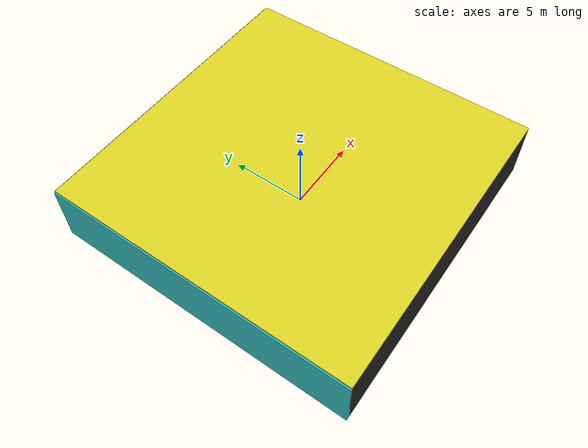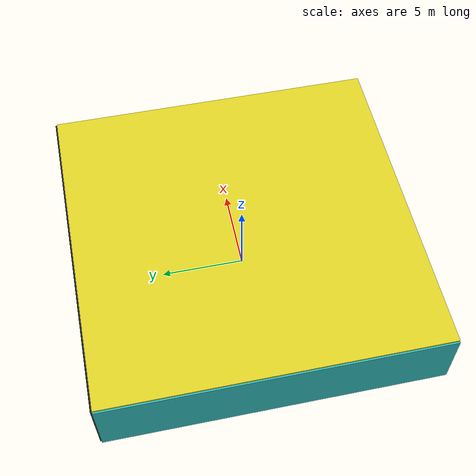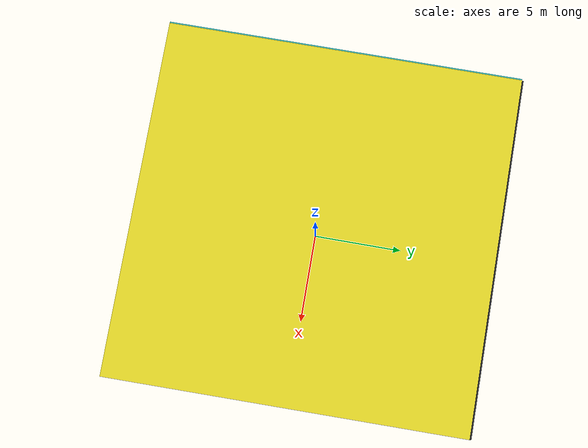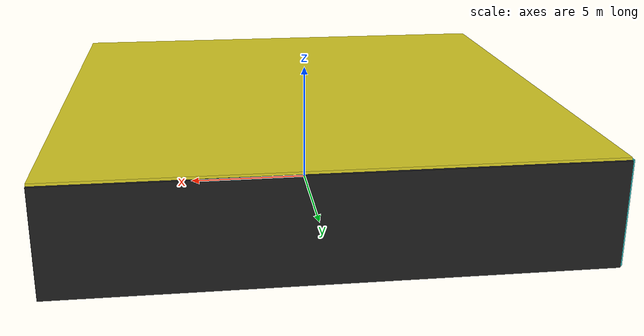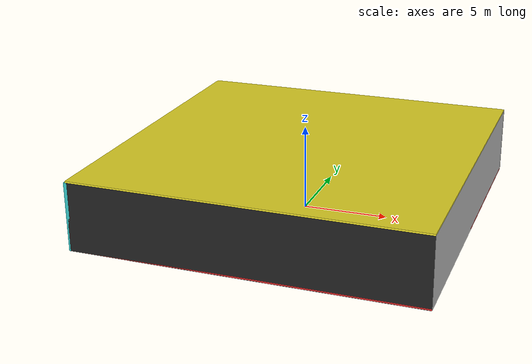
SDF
<sdf version="1.4">
 <world name="default">
  <physics type="ode">
   <max_step_size>0.001</max_step_size>
   <real_time_factor>1</real_time_factor>
   <real_time_update_rate>1000</real_time_update_rate>
   <gravity>0 0 -9.8</gravity>
  </physics>
  <scene><ambient>0.4 0.4 0.4 1</ambient><background>0.7 0.7 0.7 1</background><shadows>1</shadows></scene>
  <model name="Surrounding">
   <static>1</static>
   <link name="Ceiling">
    <collision name="Ceiling_Collision"><geometry><box><size>20 20 0.1</size></box></geometry></collision>
    <visual name="Ceiling_Visual">
     <geometry><box><size>20 20 0.1</size></box></geometry>
     <material>
      <script><uri>file://media/materials/scripts/gazebo.material</uri><name>Gazebo/YellowGlow</name></script>
     </material>
    </visual>
    <pose>0 0 4.05 0 0 0</pose>
   </link>
   <link name="Wall_South">
    <collision name="Wall_South_Collision">
     <geometry><box><size>20 0 4</size></box></geometry>
     <pose>0 0 2 0 -0 0</pose>
    </collision>
    <visual name="Wall_South_Visual">
     <pose>0 0 2 0 -0 0</pose>
     <geometry><box><size>20 0 4</size></box></geometry>
     <material>
      <script><uri>file://media/materials/scripts/gazebo.material</uri><name>Gazebo/Black</name></script>
     </material>
    </visual>
    <velocity_decay><linear>0</linear><angular>0</angular></velocity_decay>
    <pose>0 -10 0 0 -0 0</pose>
   </link>
   <link name="Wall_East">
    <collision name="Wall_21_Collision">
     <geometry><box><size>20 0 4</size></box></geometry>
     <pose>0 0 2 0 -0 0</pose>
    </collision>
    <visual name="Wall_21_Visual">
     <pose>0 0 2 0 -0 0</pose>
     <geometry><box><size>20 0 4</size></box></geometry>
     <material>
      <script><uri>file://media/materials/scripts/gazebo.material</uri><name>Gazebo/JointAnchor</name></script>
     </material>
    </visual>
    <velocity_decay><linear>0</linear><angular>0</angular></velocity_decay>
    <pose>10 0 0 0 -0 1.5708</pose>
   </link>
   <link name="Wall_North">
    <collision name="Wall_22_Collision">
     <geometry><box><size>20 0.2 4</size></box></geometry>
     <pose>0 0 2 0 -0 0</pose>
    </collision>
    <visual name="Wall_22_Visual">
     <pose>0 0 2 0 -0 0</pose>
     <geometry><box><size>20 0.2 4</size></box></geometry>
     <material>
      <script><uri>file://media/materials/scripts/gazebo.material</uri><name>Gazebo/FlatBlack</name></script>
     </material>
    </visual>
    <velocity_decay><linear>0</linear><angular>0</angular></velocity_decay>
    <pose>0 10 0 0 -0 0</pose>
   </link>
   <link name="Wall_West">
    <collision name="Wall_23_Collision">
     <geometry><box><size>20 0.2 4</size></box></geometry>
     <pose>0 0 2 0 -0 0</pose>
    </collision>
    <visual name="Wall_23_Visual">
     <pose>0 0 2 0 -0 0</pose>
     <geometry><box><size>20 0.2 4</size></box></geometry>
     <material>
      <script>
       <uri>file://media/materials/scripts/gazebo.material</uri>
       <name>Gazebo/TurquoiseGlowOutline</name>
      </script>
     </material>
    </visual>
    <velocity_decay><linear>0</linear><angular>0</angular></velocity_decay>
    <pose>-10 0 0 0 0 -1.5708</pose>
   </link>
   <link name="Ground_link">
    <collision name="collision">
     <pose>0 0 .05 0 -0 0</pose>
     <geometry><box><size>20 20 0.1</size></box></geometry>
    </collision>
    <visual name="visual">
     <pose>0 0 .05 0 -0 0</pose>
     <geometry><box><size>20 20 0.1</size></box></geometry>
     <material>
      <script><uri>file://media/materials/scripts/gazebo.material</uri><name>Gazebo/RedBright</name></script>
     </material>
    </visual>
   </link>
   <static>1</static>
  </model>
  <spherical_coordinates>
   <surface_model>EARTH_WGS84</surface_model>
   <latitude_deg>0</latitude_deg>
   <longitude_deg>0</longitude_deg>
   <elevation>0</elevation>
   <heading_deg>0</heading_deg>
  </spherical_coordinates>
  <light name="lightball_0" type="diffuse">
   <diffuse>0.8 0.8 0.8 1</diffuse>
   <specular>0.2 0.2 0.2 1</specular>
   <attenuation>
    <range>100</range>
    <constant>0.7</constant>
    <linear>0.01</linear>
    <quadratic>0.001</quadratic>
   </attenuation>
   <direction>-0.5 0.1 -0.9</direction>
   <pose>1.68954356245 6.38023153519 3.63768194771 0 0 0</pose>
  </light>
  <light name="lightball_1" type="diffuse">
   <diffuse>0.8 0.8 0.8 1</diffuse>
   <specular>0.2 0.2 0.2 1</specular>
   <attenuation>
    <range>100</range>
    <constant>0.7</constant>
    <linear>0.01</linear>
    <quadratic>0.001</quadratic>
   </attenuation>
   <direction>-0.5 0.1 -0.9</direction>
   <pose>-9.59677507333 -0.400204717369 0.662959813769 0 0 0</pose>
  </light>
  <light name="lightball_2" type="diffuse">
   <diffuse>0.8 0.8 0.8 1</diffuse>
   <specular>0.2 0.2 0.2 1</specular>
   <attenuation>
    <range>100</range>
    <constant>0.7</constant>
    <linear>0.01</linear>
    <quadratic>0.001</quadratic>
   </attenuation>
   <direction>-0.5 0.1 -0.9</direction>
   <pose>3.75434456148 7.85565657881 0.764162296915 0 0 0</pose>
  </light>
  <light name="lightball_3" type="diffuse">
   <diffuse>0.8 0.8 0.8 1</diffuse>
   <specular>0.2 0.2 0.2 1</specular>
   <attenuation>
    <range>100</range>
    <constant>0.7</constant>
    <linear>0.01</linear>
    <quadratic>0.001</quadratic>
   </attenuation>
   <direction>-0.5 0.1 -0.9</direction>
   <pose>6.83396876569 1.79671981876 0.537615651024 0 0 0</pose>
  </light>
  <light name="lightball_4" type="diffuse">
   <diffuse>0.8 0.8 0.8 1</diffuse>
   <specular>0.2 0.2 0.2 1</specular>
   <attenuation>
    <range>100</range>
    <constant>0.7</constant>
    <linear>0.01</linear>
    <quadratic>0.001</quadratic>
   </attenuation>
   <direction>-0.5 0.1 -0.9</direction>
   <pose>4.66531514531 -4.94188861798 3.28655932729 0 0 0</pose>
  </light>
  <light name="lightball_5" type="diffuse">
   <diffuse>0.8 0.8 0.8 1</diffuse>
   <specular>0.2 0.2 0.2 1</specular>
   <attenuation>
    <range>100</range>
    <constant>0.7</constant>
    <linear>0.01</linear>
    <quadratic>0.001</quadratic>
   </attenuation>
   <direction>-0.5 0.1 -0.9</direction>
   <pose>5.42495112502 8.78498590259 3.47505460437 0 0 0</pose>
  </light>
  <light name="lightball_6" type="diffuse">
   <diffuse>0.8 0.8 0.8 1</diffuse>
   <specular>0.2 0.2 0.2 1</specular>
   <attenuation>
    <range>100</range>
    <constant>0.7</constant>
    <linear>0.01</linear>
    <quadratic>0.001</quadratic>
   </attenuation>
   <direction>-0.5 0.1 -0.9</direction>
   <pose>-7.8101477818 -9.66792947738 3.23702415565 0 0 0</pose>
  </light>
  <light name="lightball_7" type="diffuse">
   <diffuse>0.8 0.8 0.8 1</diffuse>
   <specular>0.2 0.2 0.2 1</specular>
   <attenuation>
    <range>100</range>
    <constant>0.7</constant>
    <linear>0.01</linear>
    <quadratic>0.001</quadratic>
   </attenuation>
   <direction>-0.5 0.1 -0.9</direction>
   <pose>6.84826296666 -0.977730094625 2.81564192821 0 0 0</pose>
  </light>
  <light name="lightball_8" type="diffuse">
   <diffuse>0.8 0.8 0.8 1</diffuse>
   <specular>0.2 0.2 0.2 1</specular>
   <attenuation>
    <range>100</range>
    <constant>0.7</constant>
    <linear>0.01</linear>
    <quadratic>0.001</quadratic>
   </attenuation>
   <direction>-0.5 0.1 -0.9</direction>
   <pose>0.750073901059 2.86754409109 3.68268305259 0 0 0</pose>
  </light>
  <light name="lightball_9" type="diffuse">
   <diffuse>0.8 0.8 0.8 1</diffuse>
   <specular>0.2 0.2 0.2 1</specular>
   <attenuation>
    <range>100</range>
    <constant>0.7</constant>
    <linear>0.01</linear>
    <quadratic>0.001</quadratic>
   </attenuation>
   <direction>-0.5 0.1 -0.9</direction>
   <pose>5.33628322908 -3.75821658834 2.44974024885 0 0 0</pose>
  </light>
  <light name="lightball_10" type="diffuse">
   <diffuse>0.8 0.8 0.8 1</diffuse>
   <specular>0.2 0.2 0.2 1</specular>
   <attenuation>
    <range>100</range>
    <constant>0.7</constant>
    <linear>0.01</linear>
    <quadratic>0.001</quadratic>
   </attenuation>
   <direction>-0.5 0.1 -0.9</direction>
   <pose>-3.03584057924 -0.798273727526 0.556181745821 0 0 0</pose>
  </light>
  <light name="lightball_11" type="diffuse">
   <diffuse>0.8 0.8 0.8 1</diffuse>
   <specular>0.2 0.2 0.2 1</specular>
   <attenuation>
    <range>100</range>
    <constant>0.7</constant>
    <linear>0.01</linear>
    <quadratic>0.001</quadratic>
   </attenuation>
   <direction>-0.5 0.1 -0.9</direction>
   <pose>-8.41202814674 3.18321135239 1.53470479114 0 0 0</pose>
  </light>
  <include><uri>model://cabinet</uri><pose>-4.82958702289 -1.95004337886 0 0 0 1.06392696969</pose></include>
  <include><uri>model://cabinet</uri><pose>-1.74840412537 3.50338583415 0 0 0 1.16789365331</pose></include>
  <include><uri>model://cabinet</uri><pose>-2.42516141747 6.67462140191 0 0 0 0.771841608232</pose></include>
 </world>
</sdf>

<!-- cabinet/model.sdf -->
<sdf version="1.5">
  <model name="cabinet">
    <static>true</static>
    <link name="cabinet_bottom_plate">
      <inertial>
        <pose>0 0 -1 0 0 0</pose>
        <inertia>
          <ixx>2.050000</ixx>
          <ixy>0</ixy>
          <ixz>0</ixz>
          <iyy>2.050000</iyy>
          <iyz>0</iyz>
          <izz>2.050000</izz>
        </inertia>
        <mass>25.000000</mass>
      </inertial>
      <collision name="cabinet_bottom_plate_geom">
        <pose>0 0 0.010000 0 0 0</pose>
        <geometry>
          <box>
            <size>0.450000 0.450000 0.020000</size>
          </box>
        </geometry>
      </collision>
      <visual name="cabinet_bottom_plate_geom_visual">
        <pose>0 0 0.010000 0 0 0</pose>
        <geometry>
          <box>
            <size>0.450000 0.450000 0.020000</size>
          </box>
        </geometry>
        <material>
          <script>
            <uri>model://media/materials/scripts/gazebo.material</uri>
            <name>Gazebo/Wood</name>
          </script>
        </material>
      </visual>
      <collision name="cabinet_bottom_plate_geom_cabinet_back_plate">
        <pose>0.235000 0 0.510000 0 0 0</pose>
        <geometry>
          <box>
            <size>0.020000 0.450000 1.020000</size>
          </box>
        </geometry>
      </collision>
      <visual name="cabinet_bottom_plate_geom_cabinet_back_plate_visual">
        <pose>0.235000 0 0.510000 0 0 0</pose>
        <geometry>
          <box>
            <size>0.020000 0.450000 1.020000</size>
          </box>
        </geometry>
        <material>
          <script>
            <uri>model://media/materials/scripts/gazebo.material</uri>
            <name>Gazebo/Wood</name>
          </script>
        </material>
      </visual>
      <collision name="cabinet_bottom_plate_geom_cabinet_left_plate">
        <pose>0 0.235000 0.510000 0 0 0</pose>
        <geometry>
          <box>
            <size>0.450000 0.020000 1.020000</size>
          </box>
        </geometry>
      </collision>
      <visual name="cabinet_bottom_plate_geom_cabinet_left_plate_visual">
        <pose>0 0.235000 0.510000 0 0 0</pose>
        <geometry>
          <box>
            <size>0.450000 0.020000 1.020000</size>
          </box>
        </geometry>
        <material>
          <script>
            <uri>model://media/materials/scripts/gazebo.material</uri>
            <name>Gazebo/Wood</name>
          </script>
        </material>
      </visual>
      <collision name="cabinet_bottom_plate_geom_cabinet_middle_plate">
        <pose>0 0 0.510000 0 0 0</pose>
        <geometry>
          <box>
            <size>0.450000 0.450000 0.020000</size>
          </box>
        </geometry>
      </collision>
      <visual name="cabinet_bottom_plate_geom_cabinet_middle_plate_visual">
        <pose>0 0 0.510000 0 0 0</pose>
        <geometry>
          <box>
            <size>0.450000 0.450000 0.020000</size>
          </box>
        </geometry>
        <material>
          <script>
            <uri>model://media/materials/scripts/gazebo.material</uri>
            <name>Gazebo/Wood</name>
          </script>
        </material>
      </visual>
      <collision name="cabinet_bottom_plate_geom_cabinet_right_plate">
        <pose>0 -0.235000 0.510000 0 0 0</pose>
        <geometry>
          <box>
            <size>0.450000 0.020000 1.020000</size>
          </box>
        </geometry>
      </collision>
      <visual name="cabinet_bottom_plate_geom_cabinet_right_plate_visual">
        <pose>0 -0.235000 0.510000 0 0 0</pose>
        <geometry>
          <box>
            <size>0.450000 0.020000 1.020000</size>
          </box>
        </geometry>
        <material>
          <script>
            <uri>model://media/materials/scripts/gazebo.material</uri>
            <name>Gazebo/Wood</name>
          </script>
        </material>
      </visual>
      <collision name="cabinet_bottom_plate_geom_cabinet_top_plate">
        <pose>0 0 1.010000 0 0 0</pose>
        <geometry>
          <box>
            <size>0.450000 0.450000 0.020000</size>
          </box>
        </geometry>
      </collision>
      <visual name="cabinet_bottom_plate_geom_cabinet_top_plate_visual">
        <pose>0 0 1.010000 0 0 0</pose>
        <geometry>
          <box>
            <size>0.450000 0.450000 0.020000</size>
          </box>
        </geometry>
        <material>
          <script>
            <uri>model://media/materials/scripts/gazebo.material</uri>
            <name>Gazebo/Wood</name>
          </script>
        </material>
      </visual>
    </link>
  </model>
</sdf>
